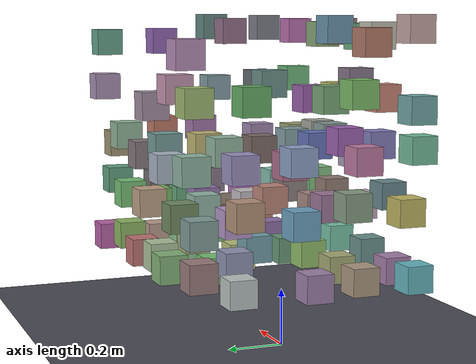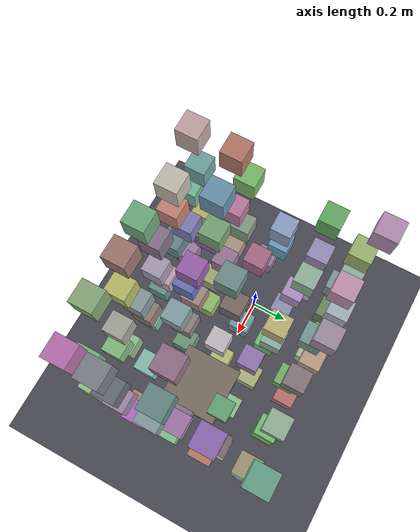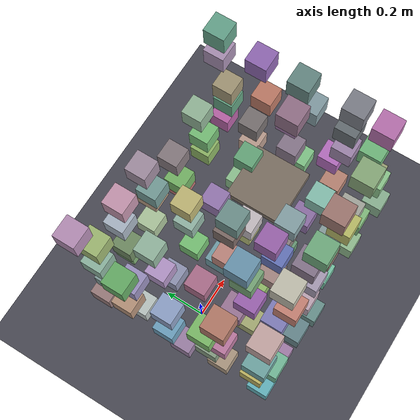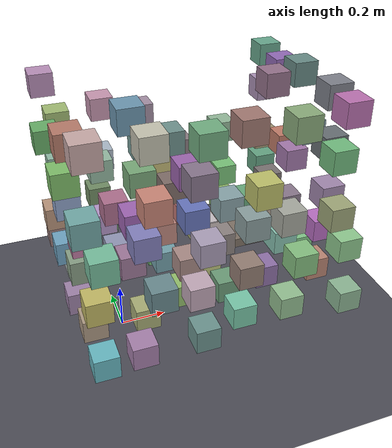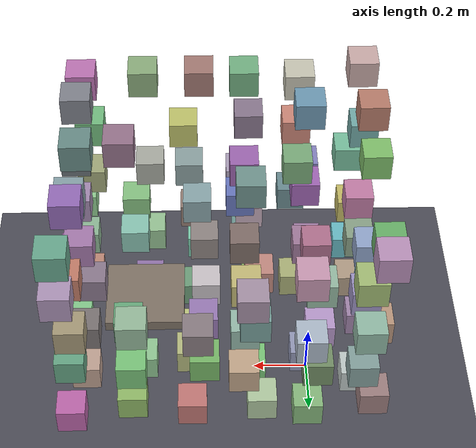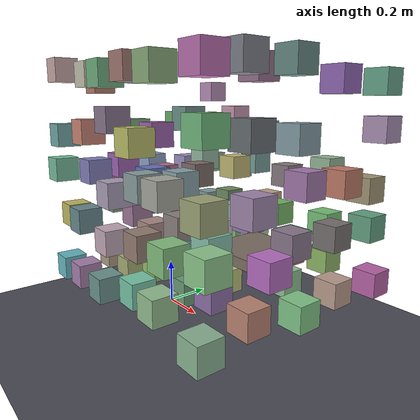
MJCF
<mujoco model="clutter_reach">
  <compiler angle="radian" autolimits="true" boundmass="0" balanceinertia="true"/>
  <option impratio="10" gravity="0 0 -9.8" integrator="implicitfast" cone="elliptic" jacobian="sparse" noslip_iterations="4">
    <flag multiccd="enable" contact="enable" warmstart="enable"/>
  </option>
  <size njmax="6000" nconmax="6000"/>
  <visual><global offwidth="1280" offheight="720"/><map znear="0.001"/>
    <headlight ambient="0.45 0.45 0.45" diffuse="0.6 0.6 0.6"/></visual>
  <worldbody>
    <light pos="0.4 0.4 3" dir="0 0 -1" diffuse="0.7 0.7 0.7"/>
    <body name="clutter" pos="0 0 0"><geom name="floor" type="plane" size="5 5 0.1" pos="0 0 0" rgba="0.30 0.30 0.34 1" contype="8" conaffinity="15"/><geom name="obj_pad" type="box" pos="0.60 0 0.42" size="0.14 0.14 0.02" rgba="0.5 0.45 0.4 1" contype="8" conaffinity="15"/><geom name="cl_0" type="box" pos="-0.169 -0.438 0.243" size="0.05 0.05 0.05" contype="0" conaffinity="0" rgba="0.41 0.73 0.77 1"/><geom name="cl_1" type="box" pos="-0.171 -0.402 0.483" size="0.05 0.05 0.05" contype="0" conaffinity="0" rgba="0.77 0.73 0.40 1"/><geom name="cl_2" type="box" pos="-0.151 -0.457 0.698" size="0.05 0.05 0.05" contype="0" conaffinity="0" rgba="0.47 0.75 0.62 1"/><geom name="cl_3" type="box" pos="-0.196 -0.426 0.842" size="0.05 0.05 0.05" contype="0" conaffinity="0" rgba="0.45 0.67 0.66 1"/><geom name="cl_4" type="box" pos="-0.171 -0.429 1.120" size="0.05 0.05 0.05" contype="0" conaffinity="0" rgba="0.79 0.67 0.66 1"/><geom name="cl_5" type="box" pos="-0.165 -0.229 0.251" size="0.05 0.05 0.05" contype="0" conaffinity="0" rgba="0.69 0.61 0.52 1"/><geom name="cl_6" type="box" pos="-0.181 -0.189 0.515" size="0.05 0.05 0.05" contype="0" conaffinity="0" rgba="0.54 0.63 0.53 1"/><geom name="cl_7" type="box" pos="-0.172 -0.233 0.671" size="0.05 0.05 0.05" contype="0" conaffinity="0" rgba="0.76 0.49 0.65 1"/><geom name="cl_8" type="box" pos="-0.213 -0.193 0.903" size="0.05 0.05 0.05" contype="0" conaffinity="0" rgba="0.50 0.75 0.42 1"/><geom name="cl_9" type="box" pos="-0.193 -0.248 1.076" size="0.05 0.05 0.05" contype="0" conaffinity="0" rgba="0.72 0.49 0.42 1"/><geom name="cl_10" type="box" pos="-0.188 -0.044 0.247" size="0.05 0.05 0.05" contype="0" conaffinity="0" rgba="0.63 0.52 0.67 1"/><geom name="cl_11" type="box" pos="-0.204 0.015 0.469" size="0.05 0.05 0.05" contype="0" conaffinity="0" rgba="0.44 0.65 0.77 1"/><geom name="cl_12" type="box" pos="-0.185 0.016 0.680" size="0.05 0.05 0.05" contype="0" conaffinity="0" rgba="0.57 0.65 0.80 1"/><geom name="cl_13" type="box" pos="-0.146 0.217 0.241" size="0.05 0.05 0.05" contype="0" conaffinity="0" rgba="0.75 0.79 0.78 1"/><geom name="cl_14" type="box" pos="-0.208 0.218 0.511" size="0.05 0.05 0.05" contype="0" conaffinity="0" rgba="0.73 0.59 0.49 1"/><geom name="cl_15" type="box" pos="-0.156 0.214 0.661" size="0.05 0.05 0.05" contype="0" conaffinity="0" rgba="0.62 0.58 0.77 1"/><geom name="cl_16" type="box" pos="-0.217 0.199 0.889" size="0.05 0.05 0.05" contype="0" conaffinity="0" rgba="0.41 0.69 0.41 1"/><geom name="cl_17" type="box" pos="-0.192 0.374 0.317" size="0.05 0.05 0.05" contype="0" conaffinity="0" rgba="0.62 0.50 0.50 1"/><geom name="cl_18" type="box" pos="-0.149 0.358 0.450" size="0.05 0.05 0.05" contype="0" conaffinity="0" rgba="0.52 0.63 0.62 1"/><geom name="cl_19" type="box" pos="-0.155 0.385 0.663" size="0.05 0.05 0.05" contype="0" conaffinity="0" rgba="0.57 0.73 0.65 1"/><geom name="cl_20" type="box" pos="-0.143 0.370 0.884" size="0.05 0.05 0.05" contype="0" conaffinity="0" rgba="0.64 0.74 0.46 1"/><geom name="cl_21" type="box" pos="-0.187 0.413 1.043" size="0.05 0.05 0.05" contype="0" conaffinity="0" rgba="0.73 0.57 0.73 1"/><geom name="cl_22" type="box" pos="-0.019 -0.431 0.246" size="0.05 0.05 0.05" contype="0" conaffinity="0" rgba="0.66 0.51 0.68 1"/><geom name="cl_23" type="box" pos="0.056 -0.450 0.509" size="0.05 0.05 0.05" contype="0" conaffinity="0" rgba="0.42 0.55 0.57 1"/><geom name="cl_24" type="box" pos="0.019 -0.382 0.702" size="0.05 0.05 0.05" contype="0" conaffinity="0" rgba="0.52 0.51 0.75 1"/><geom name="cl_25" type="box" pos="0.051 -0.419 0.868" size="0.05 0.05 0.05" contype="0" conaffinity="0" rgba="0.80 0.53 0.47 1"/><geom name="cl_26" type="box" pos="0.050 -0.395 1.093" size="0.05 0.05 0.05" contype="0" conaffinity="0" rgba="0.78 0.77 0.70 1"/><geom name="cl_27" type="box" pos="0.049 -0.240 0.251" size="0.05 0.05 0.05" contype="0" conaffinity="0" rgba="0.67 0.69 0.47 1"/><geom name="cl_28" type="box" pos="0.012 -0.187 0.485" size="0.05 0.05 0.05" contype="0" conaffinity="0" rgba="0.63 0.48 0.61 1"/><geom name="cl_29" type="box" pos="0.022 -0.253 0.719" size="0.05 0.05 0.05" contype="0" conaffinity="0" rgba="0.63 0.40 0.71 1"/><geom name="cl_30" type="box" pos="0.058 -0.213 0.866" size="0.05 0.05 0.05" contype="0" conaffinity="0" rgba="0.48 0.67 0.48 1"/><geom name="cl_31" type="box" pos="0.026 -0.212 1.117" size="0.05 0.05 0.05" contype="0" conaffinity="0" rgba="0.43 0.60 0.70 1"/><geom name="cl_32" type="box" pos="-0.006 -0.029 0.645" size="0.05 0.05 0.05" contype="0" conaffinity="0" rgba="0.69 0.44 0.56 1"/><geom name="cl_33" type="box" pos="0.034 0.165 0.297" size="0.05 0.05 0.05" contype="0" conaffinity="0" rgba="0.58 0.60 0.72 1"/><geom name="cl_34" type="box" pos="-0.013 0.186 0.456" size="0.05 0.05 0.05" contype="0" conaffinity="0" rgba="0.72 0.60 0.80 1"/><geom name="cl_35" type="box" pos="-0.005 0.217 0.704" size="0.05 0.05 0.05" contype="0" conaffinity="0" rgba="0.59 0.73 0.64 1"/><geom name="cl_36" type="box" pos="0.037 0.403 0.304" size="0.05 0.05 0.05" contype="0" conaffinity="0" rgba="0.53 0.72 0.49 1"/><geom name="cl_37" type="box" pos="0.009 0.373 0.483" size="0.05 0.05 0.05" contype="0" conaffinity="0" rgba="0.45 0.56 0.40 1"/><geom name="cl_38" type="box" pos="0.040 0.408 0.651" size="0.05 0.05 0.05" contype="0" conaffinity="0" rgba="0.68 0.73 0.79 1"/><geom name="cl_39" type="box" pos="0.048 0.374 0.918" size="0.05 0.05 0.05" contype="0" conaffinity="0" rgba="0.79 0.60 0.70 1"/><geom name="cl_40" type="box" pos="0.226 -0.452 0.271" size="0.05 0.05 0.05" contype="0" conaffinity="0" rgba="0.43 0.59 0.57 1"/><geom name="cl_41" type="box" pos="0.214 -0.413 0.450" size="0.05 0.05 0.05" contype="0" conaffinity="0" rgba="0.77 0.67 0.73 1"/><geom name="cl_42" type="box" pos="0.252 -0.413 0.643" size="0.05 0.05 0.05" contype="0" conaffinity="0" rgba="0.68 0.63 0.73 1"/><geom name="cl_43" type="box" pos="0.223 -0.395 0.920" size="0.05 0.05 0.05" contype="0" conaffinity="0" rgba="0.54 0.47 0.56 1"/><geom name="cl_44" type="box" pos="0.240 -0.425 1.087" size="0.05 0.05 0.05" contype="0" conaffinity="0" rgba="0.45 0.69 0.51 1"/><geom name="cl_45" type="box" pos="0.195 -0.191 0.285" size="0.05 0.05 0.05" contype="0" conaffinity="0" rgba="0.59 0.76 0.43 1"/><geom name="cl_46" type="box" pos="0.236 -0.234 0.454" size="0.05 0.05 0.05" contype="0" conaffinity="0" rgba="0.67 0.55 0.53 1"/><geom name="cl_47" type="box" pos="0.255 -0.244 0.681" size="0.05 0.05 0.05" contype="0" conaffinity="0" rgba="0.41 0.47 0.75 1"/><geom name="cl_48" type="box" pos="0.243 -0.215 0.858" size="0.05 0.05 0.05" contype="0" conaffinity="0" rgba="0.62 0.40 0.69 1"/><geom name="cl_49" type="box" pos="0.212 0.019 0.314" size="0.05 0.05 0.05" contype="0" conaffinity="0" rgba="0.46 0.64 0.68 1"/><geom name="cl_50" type="box" pos="0.191 -0.035 0.497" size="0.05 0.05 0.05" contype="0" conaffinity="0" rgba="0.76 0.54 0.50 1"/><geom name="cl_51" type="box" pos="0.246 -0.013 0.678" size="0.05 0.05 0.05" contype="0" conaffinity="0" rgba="0.50 0.43 0.41 1"/><geom name="cl_52" type="box" pos="0.226 -0.045 0.918" size="0.05 0.05 0.05" contype="0" conaffinity="0" rgba="0.44 0.58 0.56 1"/><geom name="cl_53" type="box" pos="0.222 0.174 0.243" size="0.05 0.05 0.05" contype="0" conaffinity="0" rgba="0.48 0.78 0.47 1"/><geom name="cl_54" type="box" pos="0.248 0.206 0.471" size="0.05 0.05 0.05" contype="0" conaffinity="0" rgba="0.59 0.73 0.67 1"/><geom name="cl_55" type="box" pos="0.247 0.201 0.695" size="0.05 0.05 0.05" contype="0" conaffinity="0" rgba="0.77 0.73 0.47 1"/><geom name="cl_56" type="box" pos="0.194 0.387 0.317" size="0.05 0.05 0.05" contype="0" conaffinity="0" rgba="0.69 0.79 0.63 1"/><geom name="cl_57" type="box" pos="0.259 0.407 0.502" size="0.05 0.05 0.05" contype="0" conaffinity="0" rgba="0.76 0.65 0.54 1"/><geom name="cl_58" type="box" pos="0.222 0.358 0.702" size="0.05 0.05 0.05" contype="0" conaffinity="0" rgba="0.47 0.63 0.61 1"/><geom name="cl_59" type="box" pos="0.234 0.401 0.849" size="0.05 0.05 0.05" contype="0" conaffinity="0" rgba="0.65 0.57 0.65 1"/><geom name="cl_60" type="box" pos="0.398 -0.404 0.296" size="0.05 0.05 0.05" contype="0" conaffinity="0" rgba="0.48 0.79 0.67 1"/><geom name="cl_61" type="box" pos="0.422 -0.393 0.479" size="0.05 0.05 0.05" contype="0" conaffinity="0" rgba="0.59 0.50 0.46 1"/><geom name="cl_62" type="box" pos="0.437 -0.392 0.694" size="0.05 0.05 0.05" contype="0" conaffinity="0" rgba="0.55 0.63 0.63 1"/><geom name="cl_63" type="box" pos="0.455 -0.429 0.853" size="0.05 0.05 0.05" contype="0" conaffinity="0" rgba="0.75 0.76 0.42 1"/><geom name="cl_64" type="box" pos="0.396 -0.409 1.103" size="0.05 0.05 0.05" contype="0" conaffinity="0" rgba="0.64 0.48 0.45 1"/><geom name="cl_65" type="box" pos="0.420 -0.195 0.257" size="0.05 0.05 0.05" contype="0" conaffinity="0" rgba="0.43 0.62 0.48 1"/><geom name="cl_66" type="box" pos="0.385 -0.198 0.506" size="0.05 0.05 0.05" contype="0" conaffinity="0" rgba="0.56 0.52 0.51 1"/><geom name="cl_67" type="box" pos="0.409 -0.214 0.682" size="0.05 0.05 0.05" contype="0" conaffinity="0" rgba="0.54 0.65 0.67 1"/><geom name="cl_68" type="box" pos="0.414 0.007 0.247" size="0.05 0.05 0.05" contype="0" conaffinity="0" rgba="0.75 0.78 0.50 1"/><geom name="cl_69" type="box" pos="0.381 -0.021 0.455" size="0.05 0.05 0.05" contype="0" conaffinity="0" rgba="0.79 0.76 0.78 1"/><geom name="cl_70" type="box" pos="0.437 0.179 0.320" size="0.05 0.05 0.05" contype="0" conaffinity="0" rgba="0.71 0.73 0.50 1"/><geom name="cl_71" type="box" pos="0.392 0.156 0.475" size="0.05 0.05 0.05" contype="0" conaffinity="0" rgba="0.60 0.48 0.71 1"/><geom name="cl_72" type="box" pos="0.434 0.385 0.290" size="0.05 0.05 0.05" contype="0" conaffinity="0" rgba="0.76 0.47 0.46 1"/><geom name="cl_73" type="box" pos="0.390 0.346 0.483" size="0.05 0.05 0.05" contype="0" conaffinity="0" rgba="0.47 0.72 0.41 1"/><geom name="cl_74" type="box" pos="0.410 0.378 0.657" size="0.05 0.05 0.05" contype="0" conaffinity="0" rgba="0.54 0.49 0.51 1"/><geom name="cl_75" type="box" pos="0.587 -0.434 0.314" size="0.05 0.05 0.05" contype="0" conaffinity="0" rgba="0.59 0.76 0.58 1"/><geom name="cl_76" type="box" pos="0.640 -0.421 0.497" size="0.05 0.05 0.05" contype="0" conaffinity="0" rgba="0.53 0.76 0.51 1"/><geom name="cl_77" type="box" pos="0.580 -0.402 0.694" size="0.05 0.05 0.05" contype="0" conaffinity="0" rgba="0.66 0.67 0.63 1"/><geom name="cl_78" type="box" pos="0.590 -0.426 1.090" size="0.05 0.05 0.05" contype="0" conaffinity="0" rgba="0.55 0.68 0.49 1"/><geom name="cl_79" type="box" pos="0.592 -0.200 0.293" size="0.05 0.05 0.05" contype="0" conaffinity="0" rgba="0.57 0.45 0.67 1"/><geom name="cl_80" type="box" pos="0.640 -0.247 0.495" size="0.05 0.05 0.05" contype="0" conaffinity="0" rgba="0.54 0.77 0.70 1"/><geom name="cl_81" type="box" pos="0.658 -0.054 1.103" size="0.05 0.05 0.05" contype="0" conaffinity="0" rgba="0.59 0.45 0.55 1"/><geom name="cl_82" type="box" pos="0.610 0.159 0.264" size="0.05 0.05 0.05" contype="0" conaffinity="0" rgba="0.57 0.78 0.58 1"/><geom name="cl_83" type="box" pos="0.656 0.142 0.445" size="0.05 0.05 0.05" contype="0" conaffinity="0" rgba="0.41 0.67 0.49 1"/><geom name="cl_84" type="box" pos="0.640 0.375 0.319" size="0.05 0.05 0.05" contype="0" conaffinity="0" rgba="0.57 0.73 0.41 1"/><geom name="cl_85" type="box" pos="0.637 0.372 0.480" size="0.05 0.05 0.05" contype="0" conaffinity="0" rgba="0.48 0.77 0.48 1"/><geom name="cl_86" type="box" pos="0.625 0.388 0.709" size="0.05 0.05 0.05" contype="0" conaffinity="0" rgba="0.59 0.73 0.61 1"/><geom name="cl_87" type="box" pos="0.848 -0.449 0.281" size="0.05 0.05 0.05" contype="0" conaffinity="0" rgba="0.56 0.72 0.59 1"/><geom name="cl_88" type="box" pos="0.838 -0.415 0.518" size="0.05 0.05 0.05" contype="0" conaffinity="0" rgba="0.57 0.80 0.57 1"/><geom name="cl_89" type="box" pos="0.795 -0.397 0.662" size="0.05 0.05 0.05" contype="0" conaffinity="0" rgba="0.63 0.66 0.48 1"/><geom name="cl_90" type="box" pos="0.783 -0.381 0.905" size="0.05 0.05 0.05" contype="0" conaffinity="0" rgba="0.45 0.74 0.50 1"/><geom name="cl_91" type="box" pos="0.800 -0.398 1.101" size="0.05 0.05 0.05" contype="0" conaffinity="0" rgba="0.74 0.45 0.70 1"/><geom name="cl_92" type="box" pos="0.818 -0.234 0.299" size="0.05 0.05 0.05" contype="0" conaffinity="0" rgba="0.74 0.53 0.46 1"/><geom name="cl_93" type="box" pos="0.859 -0.186 0.463" size="0.05 0.05 0.05" contype="0" conaffinity="0" rgba="0.73 0.44 0.77 1"/><geom name="cl_94" type="box" pos="0.842 -0.244 0.664" size="0.05 0.05 0.05" contype="0" conaffinity="0" rgba="0.64 0.54 0.69 1"/><geom name="cl_95" type="box" pos="0.827 -0.243 0.889" size="0.05 0.05 0.05" contype="0" conaffinity="0" rgba="0.41 0.44 0.46 1"/><geom name="cl_96" type="box" pos="0.808 -0.259 1.114" size="0.05 0.05 0.05" contype="0" conaffinity="0" rgba="0.50 0.51 0.55 1"/><geom name="cl_97" type="box" pos="0.855 -0.032 0.274" size="0.05 0.05 0.05" contype="0" conaffinity="0" rgba="0.52 0.79 0.55 1"/><geom name="cl_98" type="box" pos="0.787 -0.007 0.497" size="0.05 0.05 0.05" contype="0" conaffinity="0" rgba="0.55 0.48 0.56 1"/><geom name="cl_99" type="box" pos="0.815 0.020 0.709" size="0.05 0.05 0.05" contype="0" conaffinity="0" rgba="0.65 0.48 0.68 1"/><geom name="cl_100" type="box" pos="0.841 -0.054 0.870" size="0.05 0.05 0.05" contype="0" conaffinity="0" rgba="0.53 0.63 0.66 1"/><geom name="cl_101" type="box" pos="0.795 -0.022 1.119" size="0.05 0.05 0.05" contype="0" conaffinity="0" rgba="0.41 0.55 0.53 1"/><geom name="cl_102" type="box" pos="0.812 0.210 0.275" size="0.05 0.05 0.05" contype="0" conaffinity="0" rgba="0.75 0.63 0.57 1"/><geom name="cl_103" type="box" pos="0.800 0.206 0.492" size="0.05 0.05 0.05" contype="0" conaffinity="0" rgba="0.48 0.45 0.45 1"/><geom name="cl_104" type="box" pos="0.853 0.172 0.706" size="0.05 0.05 0.05" contype="0" conaffinity="0" rgba="0.76 0.49 0.41 1"/><geom name="cl_105" type="box" pos="0.818 0.184 1.063" size="0.05 0.05 0.05" contype="0" conaffinity="0" rgba="0.58 0.42 0.72 1"/><geom name="cl_106" type="box" pos="0.853 0.400 0.280" size="0.05 0.05 0.05" contype="0" conaffinity="0" rgba="0.74 0.40 0.67 1"/><geom name="cl_107" type="box" pos="0.841 0.366 0.509" size="0.05 0.05 0.05" contype="0" conaffinity="0" rgba="0.40 0.65 0.52 1"/><geom name="cl_108" type="box" pos="0.830 0.360 0.657" size="0.05 0.05 0.05" contype="0" conaffinity="0" rgba="0.65 0.60 0.47 1"/><geom name="cl_109" type="box" pos="0.851 0.411 0.884" size="0.05 0.05 0.05" contype="0" conaffinity="0" rgba="0.68 0.58 0.72 1"/><geom name="cl_110" type="box" pos="0.847 0.401 1.059" size="0.05 0.05 0.05" contype="0" conaffinity="0" rgba="0.41 0.66 0.56 1"/></body>
  </worldbody>
</mujoco>
